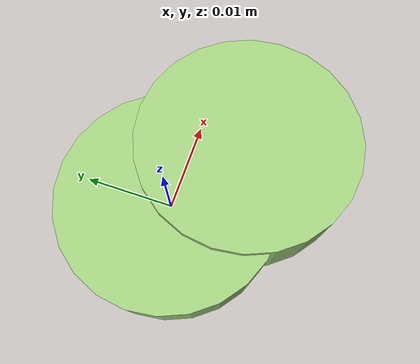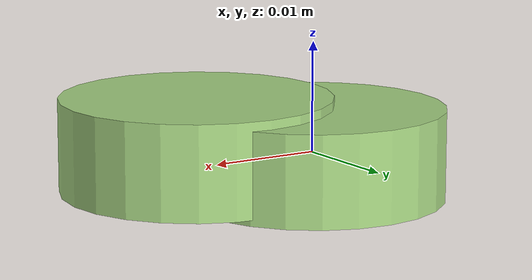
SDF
<?xml version="1.0" ?>
<!-- |    This document was autogenerated by xmacro from data/veggie_template/veggie_base.sdf.xacro  | -->
<!-- |    EDITING THIS FILE BY HAND IS NOT RECOMMENDED                                               | -->
<sdf version="1.8">
	<!-- Parameters -->
	<!-- Base -->
	<!-- Joint 0 -->
	<!-- Link 1 -->
	<!-- Joint 1 -->
	<!-- Link 2 -->
	<!-- Primitives -->
	<!-- All dimensions are half -->
	<!-- Object -->
	<model name="veggie">
		<!-- link0 -->
		<link name="link0">
			<inertial>
				<mass>0.0037061115463373605</mass>
				<inertia>
					<ixx>1.5386992407177662e-07</ixx>
					<ixy>0</ixy>
					<ixz>0</ixz>
					<iyy>1.5386992407177662e-07</iyy>
					<iyz>0</iyz>
					<izz>2.6603285731239596e-07</izz>
				</inertia>
			</inertial>
			<visual name="link0_visual">
				<pose>0 0 0 0 0 0</pose>
				<geometry>
					<cylinder>
						<radius>0.011981836637690233</radius>
						<length>0.008217142342905711</length>
					</cylinder>
				</geometry>
				<material>
					<ambient>0.659 0.839 0.514 1</ambient>
					<diffuse>0.659 0.839 0.514 1</diffuse>
					<specular>0 0 0 0</specular>
					<emissive>0 0 0 1</emissive>
				</material>
			</visual>
			<collision name="link0_collision">
				<pose>0 0 0 0 0 0 </pose>
				<geometry>
					<cylinder>
						<radius>0.011981836637690233</radius>
						<length>0.008217142342905711</length>
					</cylinder>
				</geometry>
			</collision>
		</link>
		<!-- link1 -->
		<joint name="joint0" type="fixed">
			<pose relative_to="link0">0.008483884901309632 -0.005992982271861327 0.000691303305236928 0.0 0.0 0.0</pose>
			<parent>link0</parent>
			<child>link1</child>
		</joint>
		<link name="link1">
			<pose relative_to="joint0">0 0 0 0 0 0</pose>
			<inertial>
				<mass>0.004072113898303915</mass>
				<inertia>
					<ixx>1.7983254122652556e-07</ixx>
					<ixy>0</ixy>
					<ixz>0</ixz>
					<iyy>1.7983254122652556e-07</iyy>
					<iyz>0</iyz>
					<izz>3.106971072638382e-07</izz>
				</inertia>
			</inertial>
			<visual name="link1_visual">
				<pose>0 0 0 0 0 0</pose>
				<geometry>
					<cylinder>
						<radius>0.012353034214580384</radius>
						<length>0.008494185478570983</length>
					</cylinder>
				</geometry>
				<material>
					<ambient>0.659 0.839 0.514 1</ambient>
					<diffuse>0.659 0.839 0.514 1</diffuse>
					<specular>0 0 0 0</specular>
					<emissive>0 0 0 1</emissive>
				</material>
			</visual>
			<collision name="link1_collision">
				<pose>0 0 0 0 0 0 </pose>
				<geometry>
					<cylinder>
						<radius>0.012353034214580384</radius>
						<length>0.008494185478570983</length>
					</cylinder>
				</geometry>
			</collision>
		</link>
		<!-- link2 -->
	</model>
</sdf>
